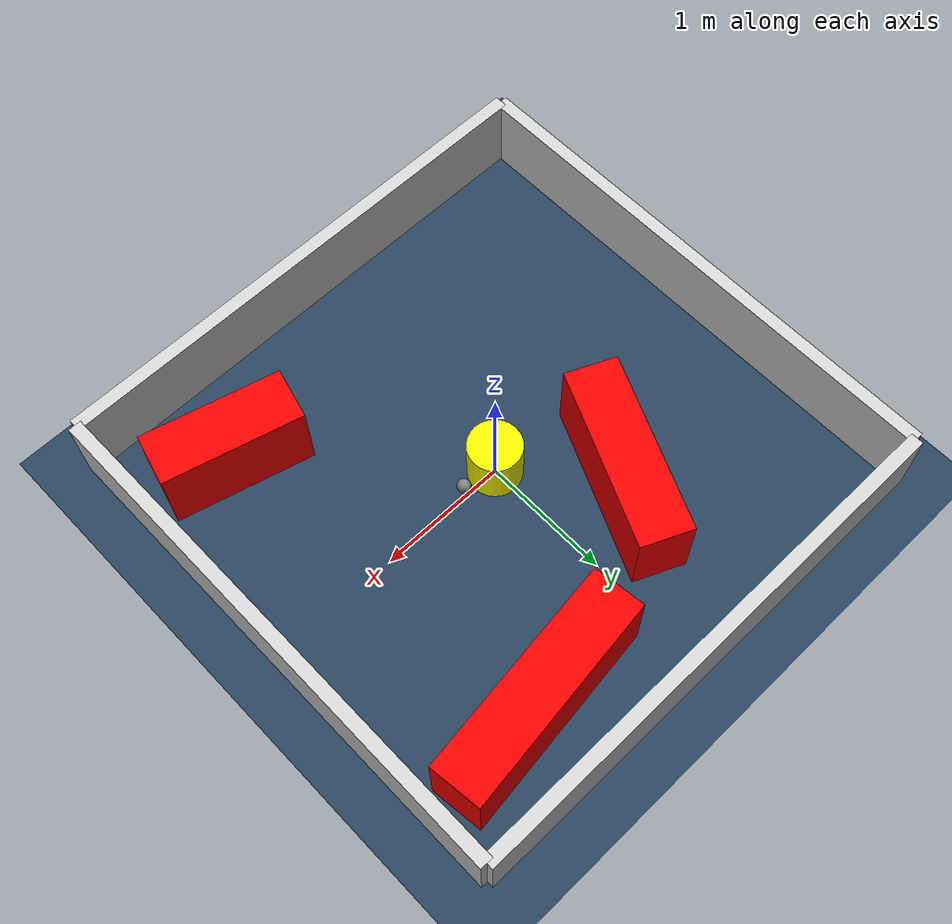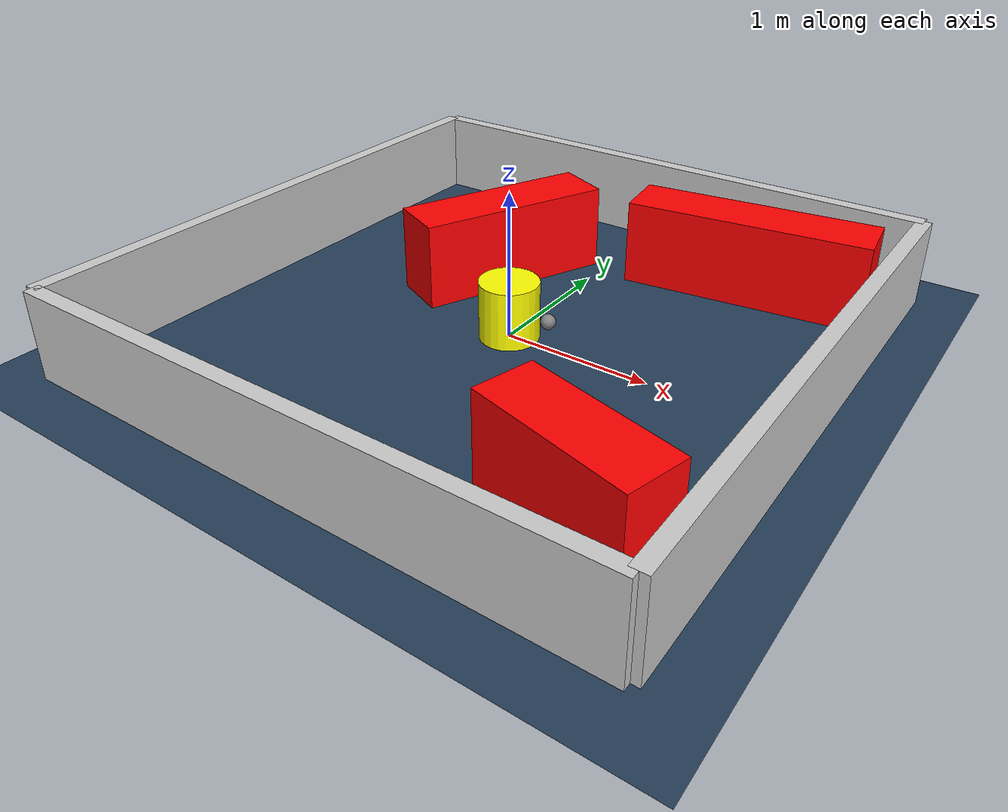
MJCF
<?xml version="1.0" ?>
<mujoco model="generated_environment">
  <option timestep="0.01" integrator="RK4" cone="elliptic"/>
  <default>
    <geom density="1"/>
  </default>
  <asset>
    <texture builtin="gradient" height="3072" rgb1="0.3 0.5 0.7" rgb2="0 0 0" type="skybox" width="512"/>
    <texture builtin="checker" height="300" mark="edge" markrgb="0.8 0.8 0.8" name="groundplane" rgb1="0.2 0.3 0.4" rgb2="0.1 0.2 0.3" type="2d" width="300"/>
    <material name="groundplane" reflectance="0.2" texrepeat="5 5" texture="groundplane" texuniform="true"/>
    <material name="robot" rgba="0.0 1.0 0.0 1"/>
  </asset>
  <worldbody>
    <light dir="0 0 -1" directional="true" pos="0 0 1.5"/>
    <geom condim="4" friction="1.0 0.005 0.001" material="groundplane" name="floor" size="0 0 0.05" type="plane"/>
    <body name="walls">
      <geom name="wall_1" condim="4" pos="-2.0 0.0 0.3" rgba="0.800000011920929 0.800000011920929 0.800000011920929 1.0" size="0.05 2.0 0.3" type="box"/>
      <geom name="wall_2" condim="4" pos="2.0 0.0 0.3" rgba="0.800000011920929 0.800000011920929 0.800000011920929 1.0" size="0.05 2.0 0.3" type="box"/>
      <geom name="wall_3" condim="4" pos="0.0 -2.0 0.3" rgba="0.800000011920929 0.800000011920929 0.800000011920929 1.0" size="2.0 0.05 0.3" type="box"/>
      <geom name="wall_4" condim="4" pos="0.0 2.0 0.3" rgba="0.800000011920929 0.800000011920929 0.800000011920929 1.0" size="2.0 0.05 0.3" type="box"/>
    </body>
    <body name="robot">
      <joint name="joint_x" type="slide" pos="0 0 0" axis="1 0 0"/>
      <joint name="joint_y" type="slide" pos="0 0 0" axis="0 1 0"/>
      <geom name="robot" type="sphere" pos="0.3 0.0 0.2" size="0.05" mass="5." friction="1.0 0.005 0.0001" condim="4" rgba="0.5 0.5 0.5 1.0"/>
      <site name="sensor_ball"/>
    </body>
    <body name="obstacle_movable_1">
      <geom name="obstacle_movable_1" condim="4" pos="0.0 0.0 0.2" euler="0 0 0.0" friction="1.0 0.005 0.001" rgba="1.0 1.0 0.0 1.0" size="0.2 0.2 0.0" type="cylinder" mass="0.1"/>
      <joint type="free"/>
    </body>
    <body name="obstacle_2_static">
      <geom name="obstacle_2_static" condim="4" pos="1.015450083733575 1.4458360774847405 0.3" euler="0 0 6.994461527575893" friction="1.0 0.005 0.001" rgba="1 0 0 1" size="0.825840792463745 0.2 0.3" type="box"/>
    </body>
    <body name="obstacle_3_static">
      <geom name="obstacle_3_static" condim="4" pos="-0.5495276386792541 0.7092138741141418 0.3" euler="0 0 65.71478810234628" friction="1.0 0.005 0.001" rgba="1 0 0 1" size="0.6872144519568582 0.2 0.3" type="box"/>
    </body>
    <body name="obstacle_4_static">
      <geom name="obstacle_4_static" condim="4" pos="1.2926426040127938 -1.3108260017033717 0.3" euler="0 0 345.11777129796945" friction="1.0 0.005 0.001" rgba="1 0 0 1" size="0.5271213593555341 0.2 0.3" type="box"/>
    </body>
  </worldbody>
  <actuator>
    <motor name="actuator_x" joint="joint_x" gear="1" ctrlrange="-1 1"/>
    <motor name="actuator_y" joint="joint_y" gear="1" ctrlrange="-1 1"/>
  </actuator>
</mujoco>
